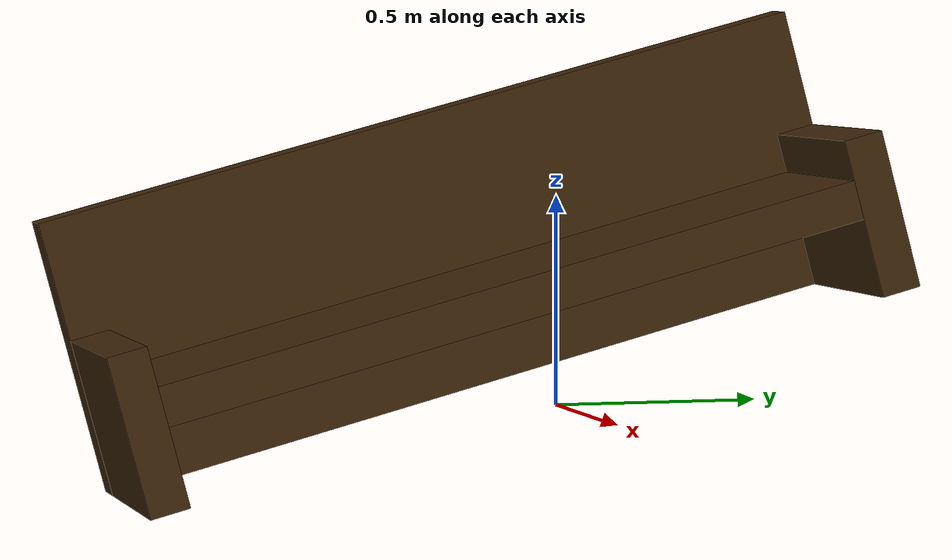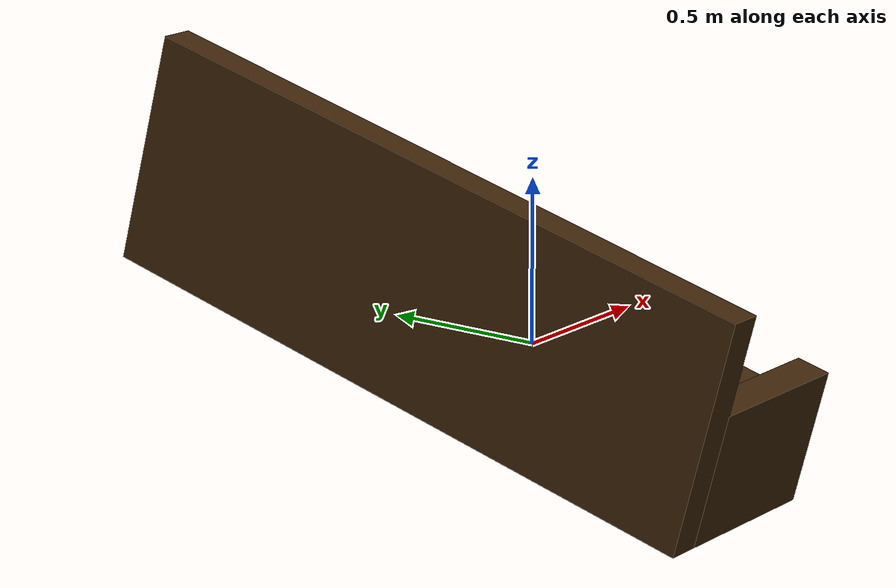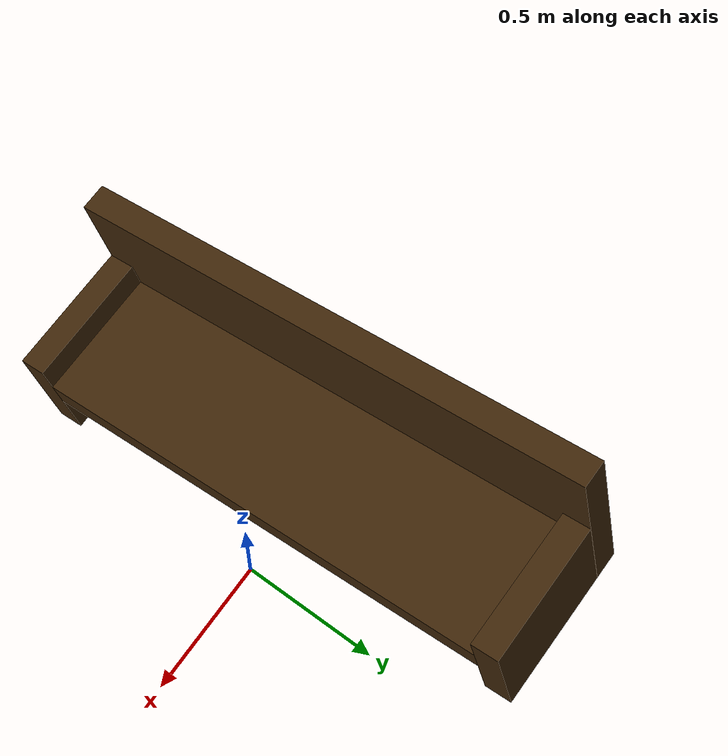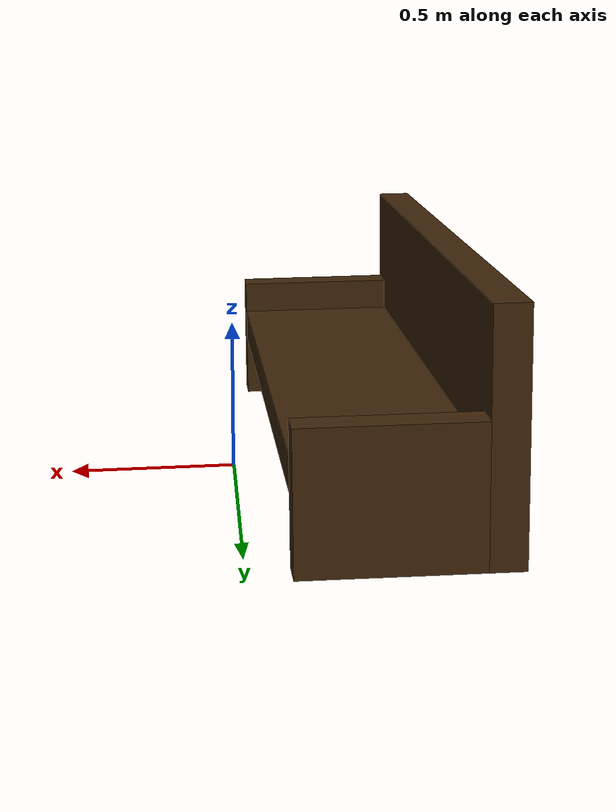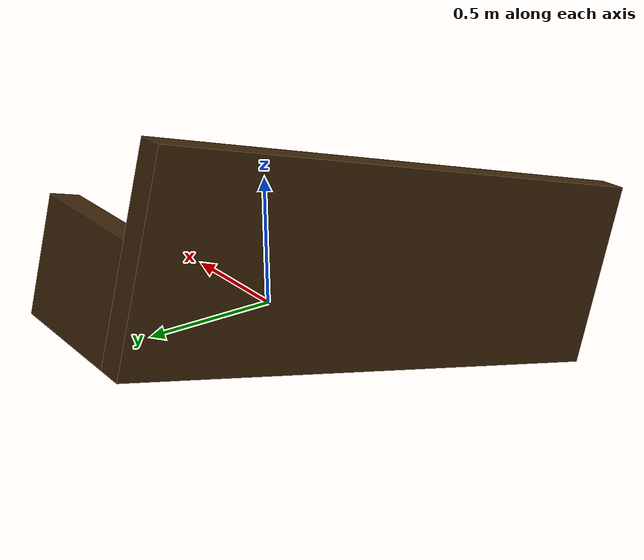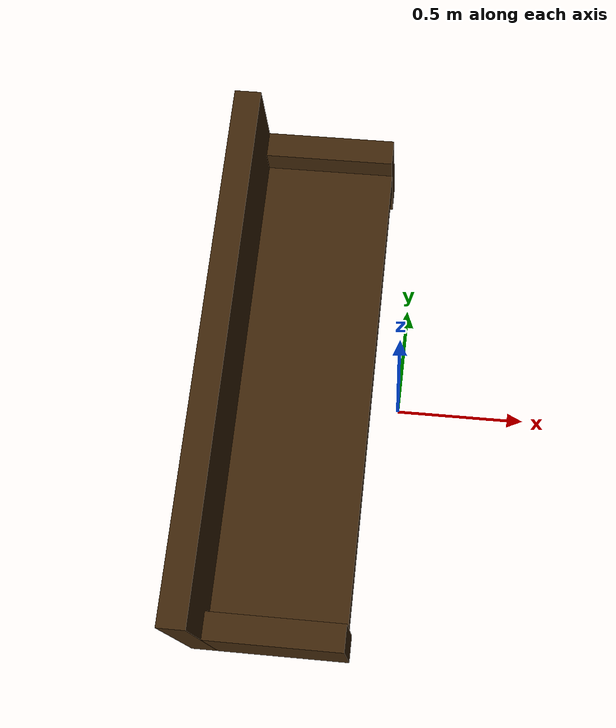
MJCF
<mujoco model="bench">
  <worldbody>
    <body name="bench" pos="-0.35 0 0" quat="0.9914449 0.1305262 0 0">
      <geom name="seat" type="box" pos="0 0 0.25" size=".25 .9 .05" mass="1." material="seat"/>
      <geom name="back" type="box" pos="-0.3 0 0.35" size=".05 1. .35" mass="1." quat="1 0 0 0" material="wood"/>
      <body name="left_arm" pos="0 0.95 0.2" quat="1 0 0 0">
        <geom name="left_arm" type="box" pos="0 0 0" size=".25 0.05 .2" mass="1." quat="1 0 0 0" material="wood"/>
      </body>
      <body name="right_arm" pos="0 -0.95 0.2" quat="1 0 0 0">
        <geom name="right_arm" type="box" pos="0 0 0" size=".25 0.05 .2" mass="1." quat="1 0 0 0" material="wood"/>
      </body>
    </body>
  </worldbody>

  <asset>
    <material name="seat" rgba="0.25 0.15 0.04 1"/>
    <material name="wood" rgba="0.25 0.15 0.04 1"/>
  </asset>

    <keyframe>

    <key name="home"
      qpos="-0.41
  -0.063
   0.81
   0.99
  -0.083
   0.00095
   0.13
  -0.065
  -0.39
   0.32
   0.031
  -0.22
  -1.4
  -2.2
  -0.34
  -0.57
  -0.032
   0.26
  -1.4
  -1.8
  -0.1
   0.78
   1
  -0.55
  -1.6
   0.41
  -0.61
  -0.67" />
  </keyframe>
</mujoco>
